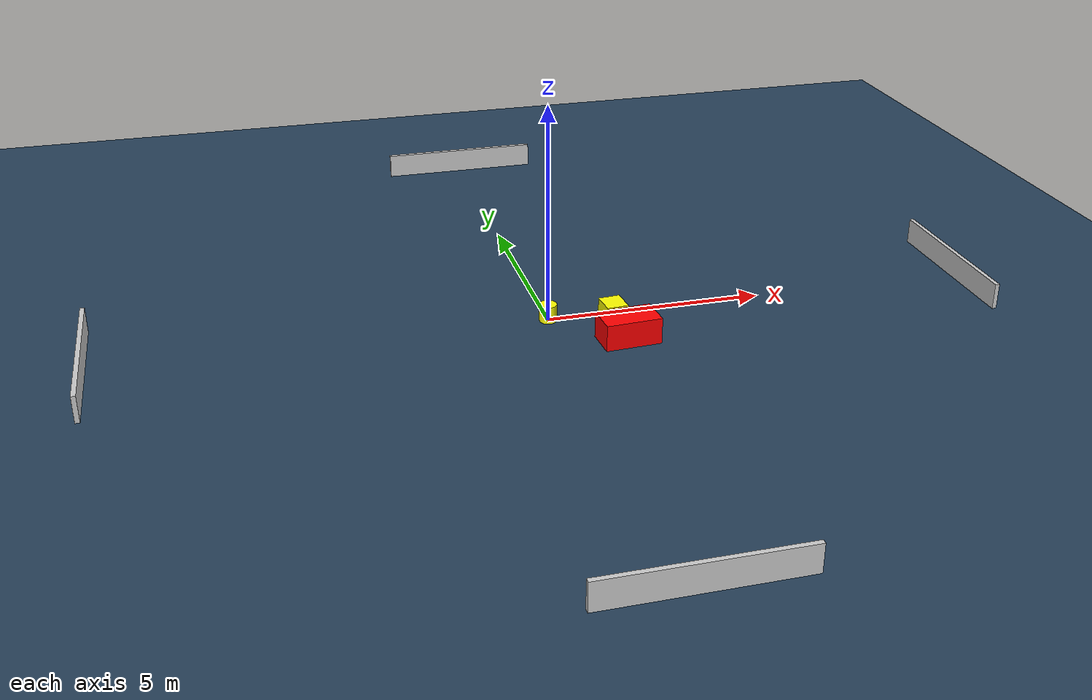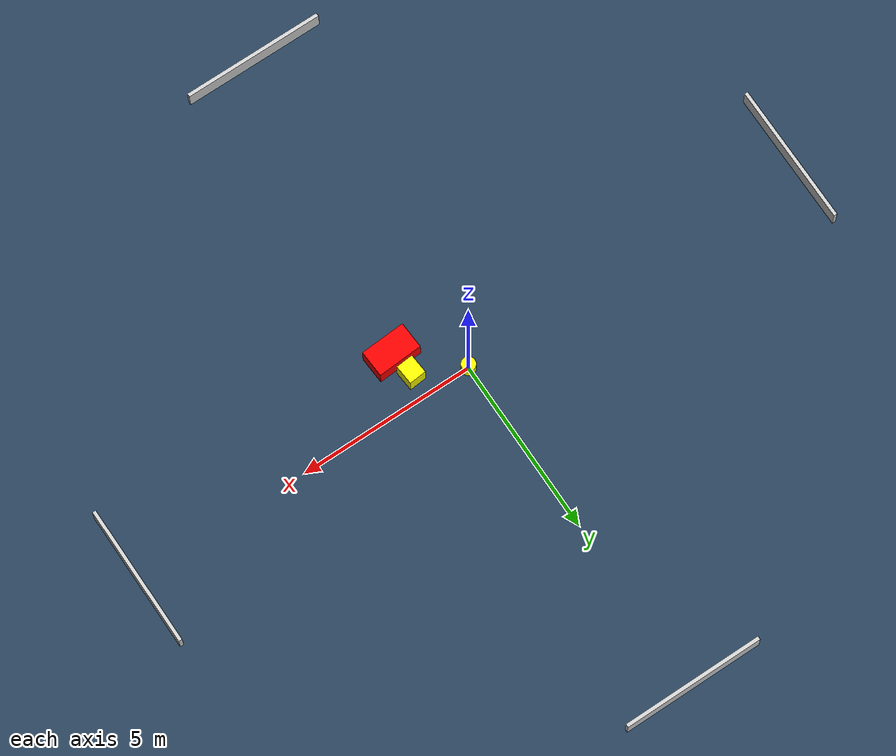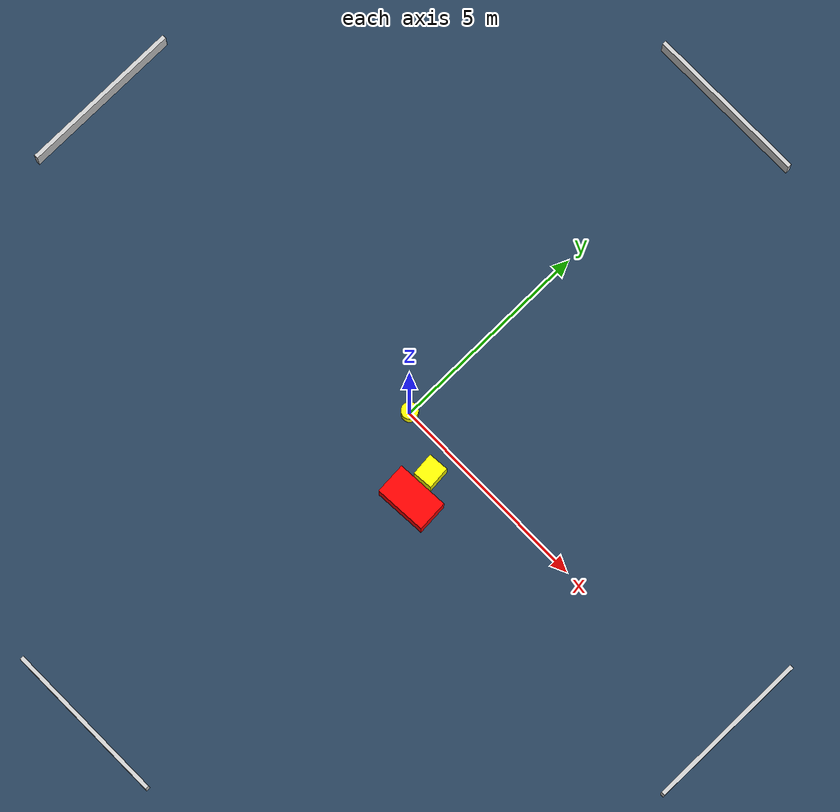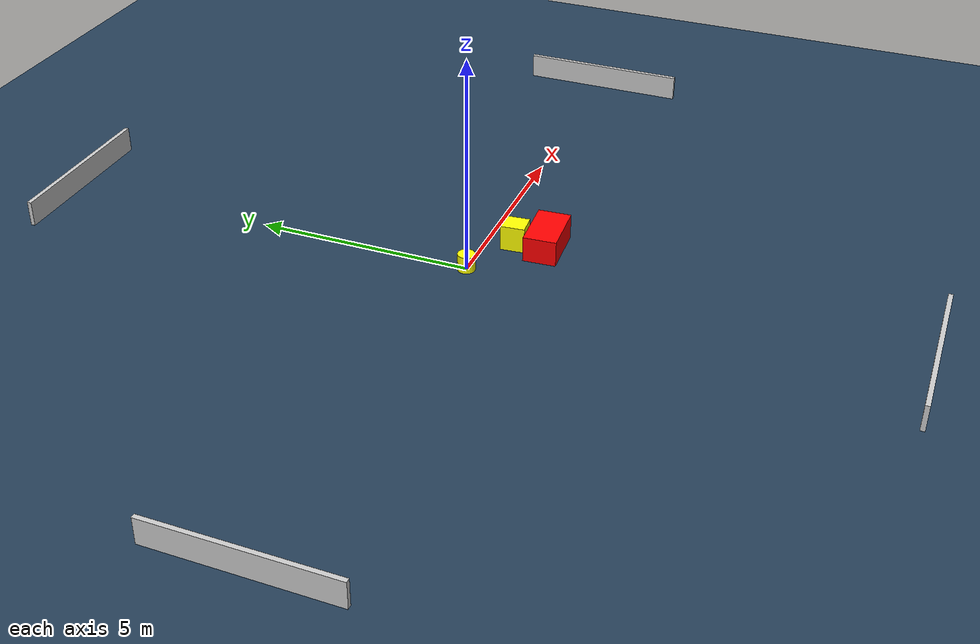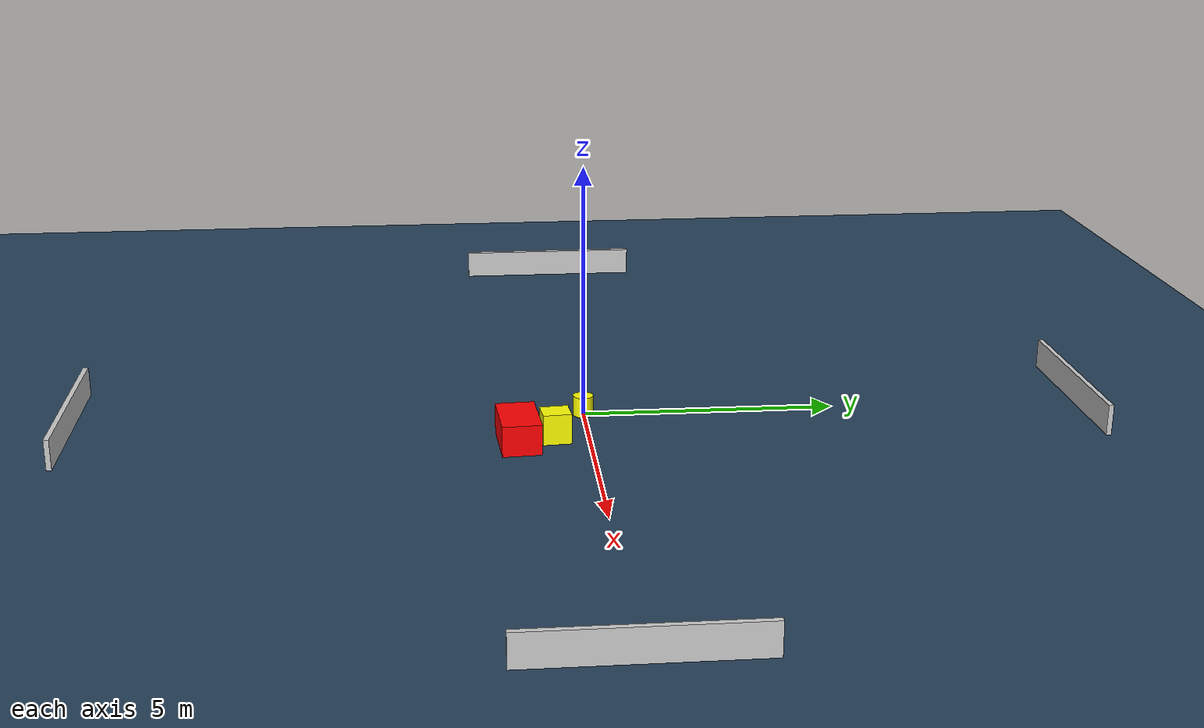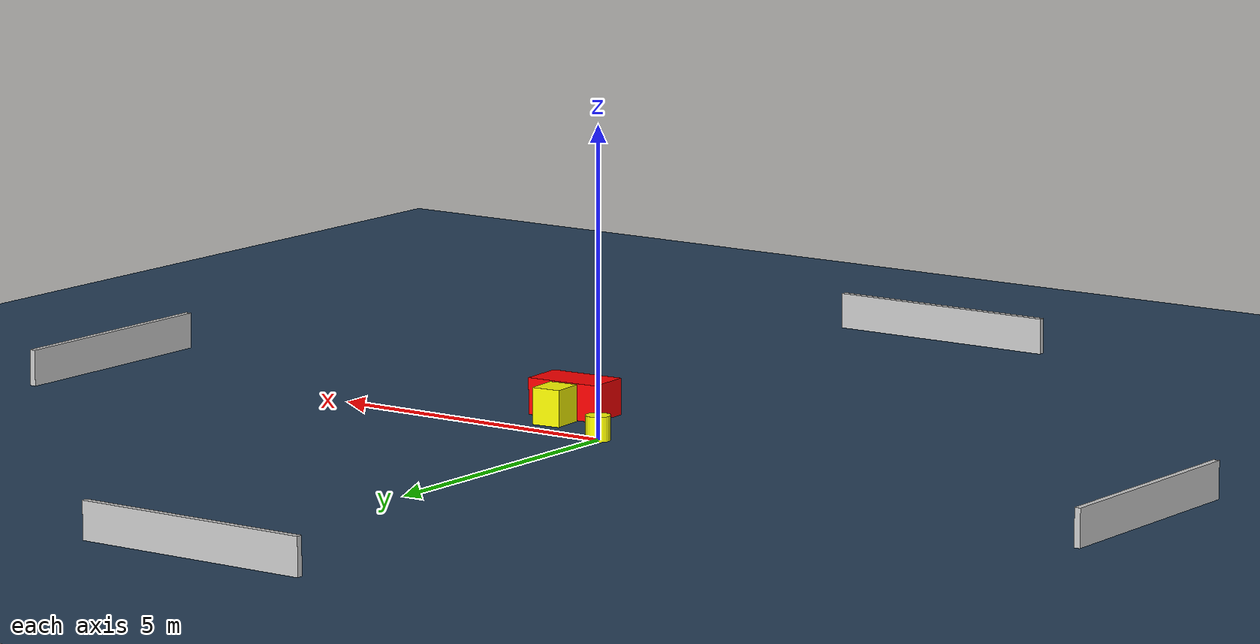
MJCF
<?xml version="1.0" ?>
<mujoco model="generated_environment">
  <option timestep="0.01" integrator="RK4" cone="elliptic"/>
  <default>
    <geom density="1"/>
  </default>
  <asset>
    <texture builtin="gradient" height="3072" name="skybox" rgb1="0.3 0.5 0.7" rgb2="0 0 0" type="skybox" width="512"/>
    <texture builtin="checker" height="300" name="groundplane" rgb1="0.2 0.3 0.4" rgb2="0.1 0.2 0.3" type="2d" width="300"/>
    <material name="groundplane" reflectance="0.2" texrepeat="5 5" texture="groundplane"/>
  </asset>
  <worldbody>
    <light dir="0 0 -1" directional="true" pos="0 0 1.5"/>
    <geom condim="3" friction="0.5 0.005 0.001" material="groundplane" name="floor" pos="0 0 0" size="0 0 0.05" type="plane"/>
    <body name="walls">
      <geom name="wall_1" condim="4" pos="-10.0 0.0 0.3" rgba="0.800000011920929 0.800000011920929 0.800000011920929 1.0" size="0.05 2.0 0.3" type="box"/>
      <geom name="wall_2" condim="4" pos="10.0 0.0 0.3" rgba="0.800000011920929 0.800000011920929 0.800000011920929 1.0" size="0.05 2.0 0.3" type="box"/>
      <geom name="wall_3" condim="4" pos="0.0 -10.0 0.3" rgba="0.800000011920929 0.800000011920929 0.800000011920929 1.0" size="2.0 0.05 0.3" type="box"/>
      <geom name="wall_4" condim="4" pos="0.0 10.0 0.3" rgba="0.800000011920929 0.800000011920929 0.800000011920929 1.0" size="2.0 0.05 0.3" type="box"/>
    </body>
    <body name="robot">
      <joint name="joint_x" type="slide" pos="0 0 0" axis="1 0 0"/>
      <joint name="joint_y" type="slide" pos="0 0 0" axis="0 1 0"/>
      <geom name="robot" type="cylinder" pos="0.0 0.0 0.2" size="0.2 0.2 0.0" mass="5.0" friction="1.0 0.005 0.0001" condim="4" rgba="1.0 1.0 0.0 1.0"/>
    </body>
    <body name="obstacle_1_movable">
      <geom name="obstacle_1_movable" condim="4" pos="1.3205531582551957 -0.645668844412029 0.3" euler="0 0 4.949845219251756" friction="0.0 0.005 0.001" rgba="1.0 1.0 0.0 1.0" size="0.2452434367051978 0.27730627061783014 0.3" type="box" mass="0.1"/>
      <joint type="free"/>
    </body>
    <body name="obstacle_2_static">
      <geom name="obstacle_2_static" condim="4" pos="1.4459586272825964 -1.3614295174623205 0.3" euler="0 0 3.4853193532376237" friction="0.0 0.005 0.001" rgba="1.0 0.0 0.0 1.0" size="0.6364695001615552 0.37970855562947914 0.3" type="box"/>
    </body>
  </worldbody>
  <actuator>
    <motor name="actuator_x" joint="joint_x" gear="1" ctrlrange="-1 1"/>
    <motor name="actuator_y" joint="joint_y" gear="1" ctrlrange="-1 1"/>
  </actuator>
</mujoco>
